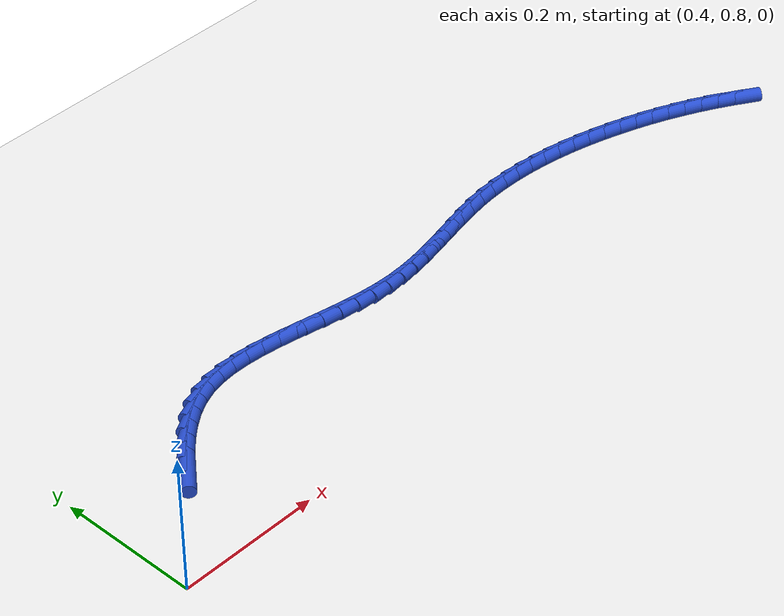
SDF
<sdf version="1.6">
 <world name="default">
  <model name="ground_plane">
   <static>1</static>
   <link name="link">
    <collision name="collision">
     <geometry><plane><normal>0 0 1</normal><size>100 100</size></plane></geometry>
     <surface><friction><ode><mu>100</mu><mu2>50</mu2></ode></friction></surface>
    </collision>
    <visual name="visual">
     <cast_shadows>0</cast_shadows>
     <geometry><plane><normal>0 0 1</normal><size>100 100</size></plane></geometry>
     <material>
      <script><uri>file://media/materials/scripts/gazebo.material</uri><name>Gazebo/WhiteGlow</name></script>
     </material>
    </visual>
   </link>
  </model>
  <model name="line">
   <link name="link_44">
    <pose>0.5318051793335732 0.9372044972562946 0.01 0 1.57 0.844241294685128</pose>
    <collision name="collision">
     <geometry><cylinder><radius>0.01</radius><length>0.08</length></cylinder></geometry>
    </collision>
    <visual name="visual">
     <material>
      <script><name>Gazebo/Blue</name><uri>file://media/materials/scripts/gazebo.material</uri></script>
     </material>
     <geometry><cylinder><radius>0.01</radius><length>0.08</length></cylinder></geometry>
    </visual>
   </link>
   <link name="link_45">
    <pose>0.549464428095109 0.957074645605384 0.01 0 1.57 0.7852507833217689</pose>
    <collision name="collision">
     <geometry><cylinder><radius>0.01</radius><length>0.08</length></cylinder></geometry>
    </collision>
    <visual name="visual">
     <material>
      <script><name>Gazebo/Blue</name><uri>file://media/materials/scripts/gazebo.material</uri></script>
     </material>
     <geometry><cylinder><radius>0.01</radius><length>0.08</length></cylinder></geometry>
    </visual>
   </link>
   <link name="link_46">
    <pose>0.567802364728753 0.9754071777425263 0.01 0 1.57 0.7102464121352884</pose>
    <collision name="collision">
     <geometry><cylinder><radius>0.01</radius><length>0.08</length></cylinder></geometry>
    </collision>
    <visual name="visual">
     <material>
      <script><name>Gazebo/Blue</name><uri>file://media/materials/scripts/gazebo.material</uri></script>
     </material>
     <geometry><cylinder><radius>0.01</radius><length>0.08</length></cylinder></geometry>
    </visual>
   </link>
   <link name="link_47">
    <pose>0.5868865470511038 0.9918187580197952 0.01 0 1.57 0.6167280467926436</pose>
    <collision name="collision">
     <geometry><cylinder><radius>0.01</radius><length>0.08</length></cylinder></geometry>
    </collision>
    <visual name="visual">
     <material>
      <script><name>Gazebo/Blue</name><uri>file://media/materials/scripts/gazebo.material</uri></script>
     </material>
     <geometry><cylinder><radius>0.01</radius><length>0.08</length></cylinder></geometry>
    </visual>
   </link>
   <link name="link_48">
    <pose>0.6067845328787589 1.0059260507892642 0.01 0 1.57 0.5025116786537385</pose>
    <collision name="collision">
     <geometry><cylinder><radius>0.01</radius><length>0.08</length></cylinder></geometry>
    </collision>
    <visual name="visual">
     <material>
      <script><name>Gazebo/Blue</name><uri>file://media/materials/scripts/gazebo.material</uri></script>
     </material>
     <geometry><cylinder><radius>0.01</radius><length>0.08</length></cylinder></geometry>
    </visual>
   </link>
   <link name="link_49">
    <pose>0.6275638800283165 1.0173457204030067 0.01 0 1.57 0.366870027957161</pose>
    <collision name="collision">
     <geometry><cylinder><radius>0.01</radius><length>0.08</length></cylinder></geometry>
    </collision>
    <visual name="visual">
     <material>
      <script><name>Gazebo/Blue</name><uri>file://media/materials/scripts/gazebo.material</uri></script>
     </material>
     <geometry><cylinder><radius>0.01</radius><length>0.08</length></cylinder></geometry>
    </visual>
   </link>
   <link name="link_50">
    <pose>0.6492919999099732 1.025695112844641 0.01 0 1.57 0.22182237832166485</pose>
    <collision name="collision">
     <geometry><cylinder><radius>0.01</radius><length>0.08</length></cylinder></geometry>
    </collision>
    <visual name="visual">
     <material>
      <script><name>Gazebo/Blue</name><uri>file://media/materials/scripts/gazebo.material</uri></script>
     </material>
     <geometry><cylinder><radius>0.01</radius><length>0.08</length></cylinder></geometry>
    </visual>
   </link>
   <link name="link_51">
    <pose>0.6719885406655574 1.0308139479143286 0.01 0 1.57 0.09598922127501763</pose>
    <collision name="collision">
     <geometry><cylinder><radius>0.01</radius><length>0.08</length></cylinder></geometry>
    </collision>
    <visual name="visual">
     <material>
      <script><name>Gazebo/Blue</name><uri>file://media/materials/scripts/gazebo.material</uri></script>
     </material>
     <geometry><cylinder><radius>0.01</radius><length>0.08</length></cylinder></geometry>
    </visual>
   </link>
   <link name="link_52">
    <pose>0.6955568890585775 1.0330832292752663 0.01 0 1.57 -0.004870464921037287</pose>
    <collision name="collision">
     <geometry><cylinder><radius>0.01</radius><length>0.08</length></cylinder></geometry>
    </collision>
    <visual name="visual">
     <material>
      <script><name>Gazebo/Blue</name><uri>file://media/materials/scripts/gazebo.material</uri></script>
     </material>
     <geometry><cylinder><radius>0.01</radius><length>0.08</length></cylinder></geometry>
    </visual>
   </link>
   <link name="link_53">
    <pose>0.7198830795682591 1.0329647484808804 0.01 0 1.57 -0.08169386236797921</pose>
    <collision name="collision">
     <geometry><cylinder><radius>0.01</radius><length>0.08</length></cylinder></geometry>
    </collision>
    <visual name="visual">
     <material>
      <script><name>Gazebo/Blue</name><uri>file://media/materials/scripts/gazebo.material</uri></script>
     </material>
     <geometry><cylinder><radius>0.01</radius><length>0.08</length></cylinder></geometry>
    </visual>
   </link>
   <link name="link_54">
    <pose>0.7448531466738287 1.0309202970845976 0.01 0 1.57 -0.13673489549262136</pose>
    <collision name="collision">
     <geometry><cylinder><radius>0.01</radius><length>0.08</length></cylinder></geometry>
    </collision>
    <visual name="visual">
     <material>
      <script><name>Gazebo/Blue</name><uri>file://media/materials/scripts/gazebo.material</uri></script>
     </material>
     <geometry><cylinder><radius>0.01</radius><length>0.08</length></cylinder></geometry>
    </visual>
   </link>
   <link name="link_55">
    <pose>0.7703531248545111 1.0274116666398443 0.01 0 1.57 -0.1723369082654439</pose>
    <collision name="collision">
     <geometry><cylinder><radius>0.01</radius><length>0.08</length></cylinder></geometry>
    </collision>
    <visual name="visual">
     <material>
      <script><name>Gazebo/Blue</name><uri>file://media/materials/scripts/gazebo.material</uri></script>
     </material>
     <geometry><cylinder><radius>0.01</radius><length>0.08</length></cylinder></geometry>
    </visual>
   </link>
   <link name="link_56">
    <pose>0.7962690485895317 1.022900648700047 0.01 0 1.57 -0.1903453874338346</pose>
    <collision name="collision">
     <geometry><cylinder><radius>0.01</radius><length>0.08</length></cylinder></geometry>
    </collision>
    <visual name="visual">
     <material>
      <script><name>Gazebo/Blue</name><uri>file://media/materials/scripts/gazebo.material</uri></script>
     </material>
     <geometry><cylinder><radius>0.01</radius><length>0.08</length></cylinder></geometry>
    </visual>
   </link>
   <link name="link_57">
    <pose>0.8224869523581163 1.0178490348186318 0.01 0 1.57 -0.19189964784672442</pose>
    <collision name="collision">
     <geometry><cylinder><radius>0.01</radius><length>0.08</length></cylinder></geometry>
    </collision>
    <visual name="visual">
     <material>
      <script><name>Gazebo/Blue</name><uri>file://media/materials/scripts/gazebo.material</uri></script>
     </material>
     <geometry><cylinder><radius>0.01</radius><length>0.08</length></cylinder></geometry>
    </visual>
   </link>
   <link name="link_58">
    <pose>0.8488928706394905 1.0127186165490254 0.01 0 1.57 -0.1773991996072403</pose>
    <collision name="collision">
     <geometry><cylinder><radius>0.01</radius><length>0.08</length></cylinder></geometry>
    </collision>
    <visual name="visual">
     <material>
      <script><name>Gazebo/Blue</name><uri>file://media/materials/scripts/gazebo.material</uri></script>
     </material>
     <geometry><cylinder><radius>0.01</radius><length>0.08</length></cylinder></geometry>
    </visual>
   </link>
   <link name="link_59">
    <pose>0.8753728379128798 1.007971185444654 0.01 0 1.57 -0.14654567163250834</pose>
    <collision name="collision">
     <geometry><cylinder><radius>0.01</radius><length>0.08</length></cylinder></geometry>
    </collision>
    <visual name="visual">
     <material>
      <script><name>Gazebo/Blue</name><uri>file://media/materials/scripts/gazebo.material</uri></script>
     </material>
     <geometry><cylinder><radius>0.01</radius><length>0.08</length></cylinder></geometry>
    </visual>
   </link>
   <link name="link_60">
    <pose>0.9018128886575095 1.0040685330589447 0.01 0 1.57 -0.09844304362267217</pose>
    <collision name="collision">
     <geometry><cylinder><radius>0.01</radius><length>0.08</length></cylinder></geometry>
    </collision>
    <visual name="visual">
     <material>
      <script><name>Gazebo/Blue</name><uri>file://media/materials/scripts/gazebo.material</uri></script>
     </material>
     <geometry><cylinder><radius>0.01</radius><length>0.08</length></cylinder></geometry>
    </visual>
   </link>
   <link name="link_61">
    <pose>0.9280990573526052 1.001472450945323 0.01 0 1.57 -0.03183169925833834</pose>
    <collision name="collision">
     <geometry><cylinder><radius>0.01</radius><length>0.08</length></cylinder></geometry>
    </collision>
    <visual name="visual">
     <material>
      <script><name>Gazebo/Blue</name><uri>file://media/materials/scripts/gazebo.material</uri></script>
     </material>
     <geometry><cylinder><radius>0.01</radius><length>0.08</length></cylinder></geometry>
    </visual>
   </link>
   <link name="link_62">
    <pose>0.954117533118761 1.0006439588054954 0.01 0 1.57 0.0453374783966986</pose>
    <collision name="collision">
     <geometry><cylinder><radius>0.01</radius><length>0.08</length></cylinder></geometry>
    </collision>
    <visual name="visual">
     <material>
      <script><name>Gazebo/Blue</name><uri>file://media/materials/scripts/gazebo.material</uri></script>
     </material>
     <geometry><cylinder><radius>0.01</radius><length>0.08</length></cylinder></geometry>
    </visual>
   </link>
   <link name="link_63">
    <pose>0.9798015615392556 1.0018092063823039 0.01 0 1.57 0.11062189219753174</pose>
    <collision name="collision">
     <geometry><cylinder><radius>0.01</radius><length>0.08</length></cylinder></geometry>
    </collision>
    <visual name="visual">
     <material>
      <script><name>Gazebo/Blue</name><uri>file://media/materials/scripts/gazebo.material</uri></script>
     </material>
     <geometry><cylinder><radius>0.01</radius><length>0.08</length></cylinder></geometry>
    </visual>
   </link>
   <link name="link_64">
    <pose>1.0051974424897039 1.0046300626487683 0.01 0 1.57 0.15974053405140326</pose>
    <collision name="collision">
     <geometry><cylinder><radius>0.01</radius><length>0.08</length></cylinder></geometry>
    </collision>
    <visual name="visual">
     <material>
      <script><name>Gazebo/Blue</name><uri>file://media/materials/scripts/gazebo.material</uri></script>
     </material>
     <geometry><cylinder><radius>0.01</radius><length>0.08</length></cylinder></geometry>
    </visual>
   </link>
   <link name="link_65">
    <pose>1.0303681062951158 1.0086853900631263 0.01 0 1.57 0.1922761442711783</pose>
    <collision name="collision">
     <geometry><cylinder><radius>0.01</radius><length>0.08</length></cylinder></geometry>
    </collision>
    <visual name="visual">
     <material>
      <script><name>Gazebo/Blue</name><uri>file://media/materials/scripts/gazebo.material</uri></script>
     </material>
     <geometry><cylinder><radius>0.01</radius><length>0.08</length></cylinder></geometry>
    </visual>
   </link>
   <link name="link_66">
    <pose>1.0553764832805026 1.0135540510836174 0.01 0 1.57 0.20814399703539768</pose>
    <collision name="collision">
     <geometry><cylinder><radius>0.01</radius><length>0.08</length></cylinder></geometry>
    </collision>
    <visual name="visual">
     <material>
      <script><name>Gazebo/Blue</name><uri>file://media/materials/scripts/gazebo.material</uri></script>
     </material>
     <geometry><cylinder><radius>0.01</radius><length>0.08</length></cylinder></geometry>
    </visual>
   </link>
   <link name="link_67">
    <pose>1.080285503770874 1.01881490816848 0.01 0 1.57 0.20732605509735863</pose>
    <collision name="collision">
     <geometry><cylinder><radius>0.01</radius><length>0.08</length></cylinder></geometry>
    </collision>
    <visual name="visual">
     <material>
      <script><name>Gazebo/Blue</name><uri>file://media/materials/scripts/gazebo.material</uri></script>
     </material>
     <geometry><cylinder><radius>0.01</radius><length>0.08</length></cylinder></geometry>
    </visual>
   </link>
   <link name="link_68">
    <pose>1.1051580980912403 1.0240468237759521 0.01 0 1.57 0.18973840762749705</pose>
    <collision name="collision">
     <geometry><cylinder><radius>0.01</radius><length>0.08</length></cylinder></geometry>
    </collision>
    <visual name="visual">
     <material>
      <script><name>Gazebo/Blue</name><uri>file://media/materials/scripts/gazebo.material</uri></script>
     </material>
     <geometry><cylinder><radius>0.01</radius><length>0.08</length></cylinder></geometry>
    </visual>
   </link>
   <link name="link_69">
    <pose>1.130057196566612 1.028828660364273 0.01 0 1.57 0.15523743946890642</pose>
    <collision name="collision">
     <geometry><cylinder><radius>0.01</radius><length>0.08</length></cylinder></geometry>
    </collision>
    <visual name="visual">
     <material>
      <script><name>Gazebo/Blue</name><uri>file://media/materials/scripts/gazebo.material</uri></script>
     </material>
     <geometry><cylinder><radius>0.01</radius><length>0.08</length></cylinder></geometry>
    </visual>
   </link>
   <link name="link_70">
    <pose>1.1550457295219996 1.0327392803916808 0.01 0 1.57 0.10423539342205594</pose>
    <collision name="collision">
     <geometry><cylinder><radius>0.01</radius><length>0.08</length></cylinder></geometry>
    </collision>
    <visual name="visual">
     <material>
      <script><name>Gazebo/Blue</name><uri>file://media/materials/scripts/gazebo.material</uri></script>
     </material>
     <geometry><cylinder><radius>0.01</radius><length>0.08</length></cylinder></geometry>
    </visual>
   </link>
   <link name="link_71">
    <pose>1.1801839685223334 1.0353691058962753 0.01 0 1.57 0.04680823275927001</pose>
    <collision name="collision">
     <geometry><cylinder><radius>0.01</radius><length>0.08</length></cylinder></geometry>
    </collision>
    <visual name="visual">
     <material>
      <script><name>Gazebo/Blue</name><uri>file://media/materials/scripts/gazebo.material</uri></script>
     </material>
     <geometry><cylinder><radius>0.01</radius><length>0.08</length></cylinder></geometry>
    </visual>
   </link>
   <link name="link_72">
    <pose>1.2054757702421408 1.0365538358164479 0.01 0 1.57 -0.00749387108331185</pose>
    <collision name="collision">
     <geometry><cylinder><radius>0.01</radius><length>0.08</length></cylinder></geometry>
    </collision>
    <visual name="visual">
     <material>
      <script><name>Gazebo/Blue</name><uri>file://media/materials/scripts/gazebo.material</uri></script>
     </material>
     <geometry><cylinder><radius>0.01</radius><length>0.08</length></cylinder></geometry>
    </visual>
   </link>
   <link name="link_73">
    <pose>1.2308710888046293 1.0363635230104722 0.01 0 1.57 -0.05832770067650977</pose>
    <collision name="collision">
     <geometry><cylinder><radius>0.01</radius><length>0.08</length></cylinder></geometry>
    </collision>
    <visual name="visual">
     <material>
      <script><name>Gazebo/Blue</name><uri>file://media/materials/scripts/gazebo.material</uri></script>
     </material>
     <geometry><cylinder><radius>0.01</radius><length>0.08</length></cylinder></geometry>
    </visual>
   </link>
   <link name="link_74">
    <pose>1.2563177223676514 1.034877593899085 0.01 0 1.57 -0.10579490099353038</pose>
    <collision name="collision">
     <geometry><cylinder><radius>0.01</radius><length>0.08</length></cylinder></geometry>
    </collision>
    <visual name="visual">
     <material>
      <script><name>Gazebo/Blue</name><uri>file://media/materials/scripts/gazebo.material</uri></script>
     </material>
     <geometry><cylinder><radius>0.01</radius><length>0.08</length></cylinder></geometry>
    </visual>
   </link>
   <link name="link_75">
    <pose>1.2817634690890616 1.0321754749030223 0.01 0 1.57 -0.15004456771101923</pose>
    <collision name="collision">
     <geometry><cylinder><radius>0.01</radius><length>0.08</length></cylinder></geometry>
    </collision>
    <visual name="visual">
     <material>
      <script><name>Gazebo/Blue</name><uri>file://media/materials/scripts/gazebo.material</uri></script>
     </material>
     <geometry><cylinder><radius>0.01</radius><length>0.08</length></cylinder></geometry>
    </visual>
   </link>
   <link name="link_76">
    <pose>1.307156127126712 1.0283365924430208 0.01 0 1.57 -0.19125651241688932</pose>
    <collision name="collision">
     <geometry><cylinder><radius>0.01</radius><length>0.08</length></cylinder></geometry>
    </collision>
    <visual name="visual">
     <material>
      <script><name>Gazebo/Blue</name><uri>file://media/materials/scripts/gazebo.material</uri></script>
     </material>
     <geometry><cylinder><radius>0.01</radius><length>0.08</length></cylinder></geometry>
    </visual>
   </link>
   <link name="link_77">
    <pose>1.3324434946384571 1.0234403729398165 0.01 0 1.57 -0.22962787257679002</pose>
    <collision name="collision">
     <geometry><cylinder><radius>0.01</radius><length>0.08</length></cylinder></geometry>
    </collision>
    <visual name="visual">
     <material>
      <script><name>Gazebo/Blue</name><uri>file://media/materials/scripts/gazebo.material</uri></script>
     </material>
     <geometry><cylinder><radius>0.01</radius><length>0.08</length></cylinder></geometry>
    </visual>
   </link>
   <link name="link_78">
    <pose>1.3575733697821502 1.0175662428141454 0.01 0 1.57 -0.26536295365318846</pose>
    <collision name="collision">
     <geometry><cylinder><radius>0.01</radius><length>0.08</length></cylinder></geometry>
    </collision>
    <visual name="visual">
     <material>
      <script><name>Gazebo/Blue</name><uri>file://media/materials/scripts/gazebo.material</uri></script>
     </material>
     <geometry><cylinder><radius>0.01</radius><length>0.08</length></cylinder></geometry>
    </visual>
   </link>
   <link name="link_79">
    <pose>1.3824935507156444 1.010793628486745 0.01 0 1.57 -0.2986670458503526</pose>
    <collision name="collision">
     <geometry><cylinder><radius>0.01</radius><length>0.08</length></cylinder></geometry>
    </collision>
    <visual name="visual">
     <material>
      <script><name>Gazebo/Blue</name><uri>file://media/materials/scripts/gazebo.material</uri></script>
     </material>
     <geometry><cylinder><radius>0.01</radius><length>0.08</length></cylinder></geometry>
    </visual>
   </link>
   <link name="link_80">
    <pose>1.4071518486698382 1.0032019217740453 0.01 0 1.57 -0.3303333072206854</pose>
    <collision name="collision">
     <geometry><cylinder><radius>0.01</radius><length>0.08</length></cylinder></geometry>
    </collision>
    <visual name="visual">
     <material>
      <script><name>Gazebo/Blue</name><uri>file://media/materials/scripts/gazebo.material</uri></script>
     </material>
     <geometry><cylinder><radius>0.01</radius><length>0.08</length></cylinder></geometry>
    </visual>
   </link>
   <link name="link_81">
    <pose>1.4315030896300764 0.9948519464617886 0.01 0 1.57 -0.3620505922451725</pose>
    <collision name="collision">
     <geometry><cylinder><radius>0.01</radius><length>0.08</length></cylinder></geometry>
    </collision>
    <visual name="visual">
     <material>
      <script><name>Gazebo/Blue</name><uri>file://media/materials/scripts/gazebo.material</uri></script>
     </material>
     <geometry><cylinder><radius>0.01</radius><length>0.08</length></cylinder></geometry>
    </visual>
   </link>
   <link name="link_82">
    <pose>1.4555206617519363 0.9857553923354878 0.01 0 1.57 -0.394106970876472</pose>
    <collision name="collision">
     <geometry><cylinder><radius>0.01</radius><length>0.08</length></cylinder></geometry>
    </collision>
    <visual name="visual">
     <material>
      <script><name>Gazebo/Blue</name><uri>file://media/materials/scripts/gazebo.material</uri></script>
     </material>
     <geometry><cylinder><radius>0.01</radius><length>0.08</length></cylinder></geometry>
    </visual>
   </link>
   <link name="link_83">
    <pose>1.4791809884203297 0.9759159149391369 0.01 0 1.57 -0.42652610196472757</pose>
    <collision name="collision">
     <geometry><cylinder><radius>0.01</radius><length>0.08</length></cylinder></geometry>
    </collision>
    <visual name="visual">
     <material>
      <script><name>Gazebo/Blue</name><uri>file://media/materials/scripts/gazebo.material</uri></script>
     </material>
     <geometry><cylinder><radius>0.01</radius><length>0.08</length></cylinder></geometry>
    </visual>
   </link>
   <link name="link_84">
    <pose>1.502460493020166 0.9653371698167295 0.01 0 1.57 -0.4593298724467123</pose>
    <collision name="collision">
     <geometry><cylinder><radius>0.01</radius><length>0.08</length></cylinder></geometry>
    </collision>
    <visual name="visual">
     <material>
      <script><name>Gazebo/Blue</name><uri>file://media/materials/scripts/gazebo.material</uri></script>
     </material>
     <geometry><cylinder><radius>0.01</radius><length>0.08</length></cylinder></geometry>
    </visual>
   </link>
   <link name="link_85">
    <pose>1.5253355989363575 0.9540228125122602 0.01 0 1.57 -0.49253806940584965</pose>
    <collision name="collision">
     <geometry><cylinder><radius>0.01</radius><length>0.08</length></cylinder></geometry>
    </collision>
    <visual name="visual">
     <material>
      <script><name>Gazebo/Blue</name><uri>file://media/materials/scripts/gazebo.material</uri></script>
     </material>
     <geometry><cylinder><radius>0.01</radius><length>0.08</length></cylinder></geometry>
    </visual>
   </link>
   <link name="link_86">
    <pose>1.5477827295538142 0.9419764985697223 0.01 0 1.57 -0.5261680299405026</pose>
    <collision name="collision">
     <geometry><cylinder><radius>0.01</radius><length>0.08</length></cylinder></geometry>
    </collision>
    <visual name="visual">
     <material>
      <script><name>Gazebo/Blue</name><uri>file://media/materials/scripts/gazebo.material</uri></script>
     </material>
     <geometry><cylinder><radius>0.01</radius><length>0.08</length></cylinder></geometry>
    </visual>
   </link>
   <link name="link_87">
    <pose>1.569778308257448 0.9292018835331108 0.01 0 1.57 -0.5602342716450229</pose>
    <collision name="collision">
     <geometry><cylinder><radius>0.01</radius><length>0.08</length></cylinder></geometry>
    </collision>
    <visual name="visual">
     <material>
      <script><name>Gazebo/Blue</name><uri>file://media/materials/scripts/gazebo.material</uri></script>
     </material>
     <geometry><cylinder><radius>0.01</radius><length>0.08</length></cylinder></geometry>
    </visual>
   </link>
  </model>
 </world>
</sdf>
